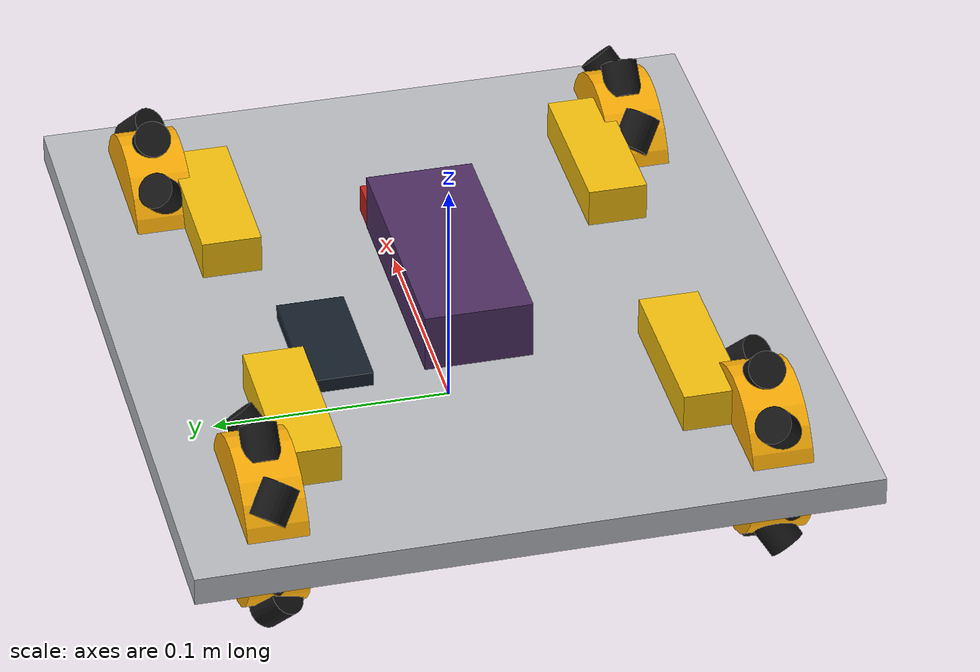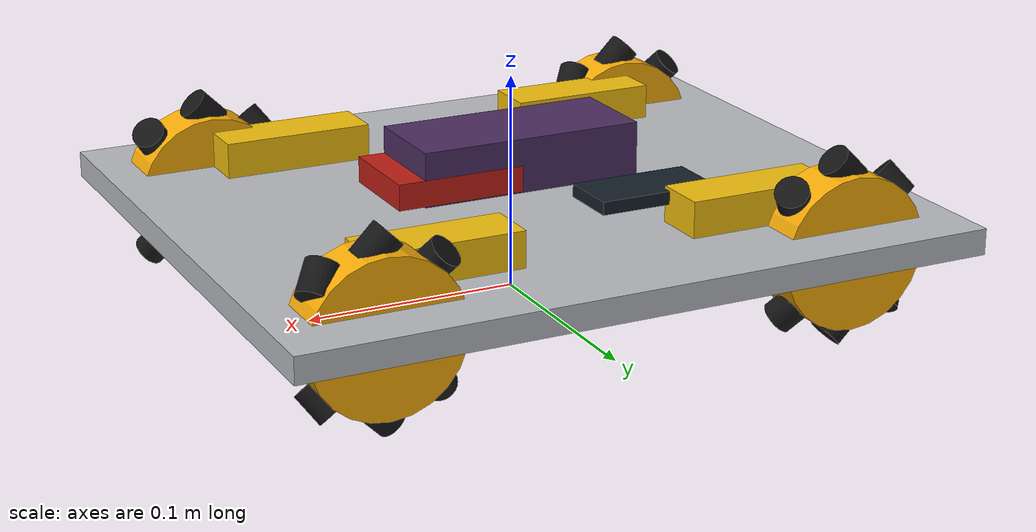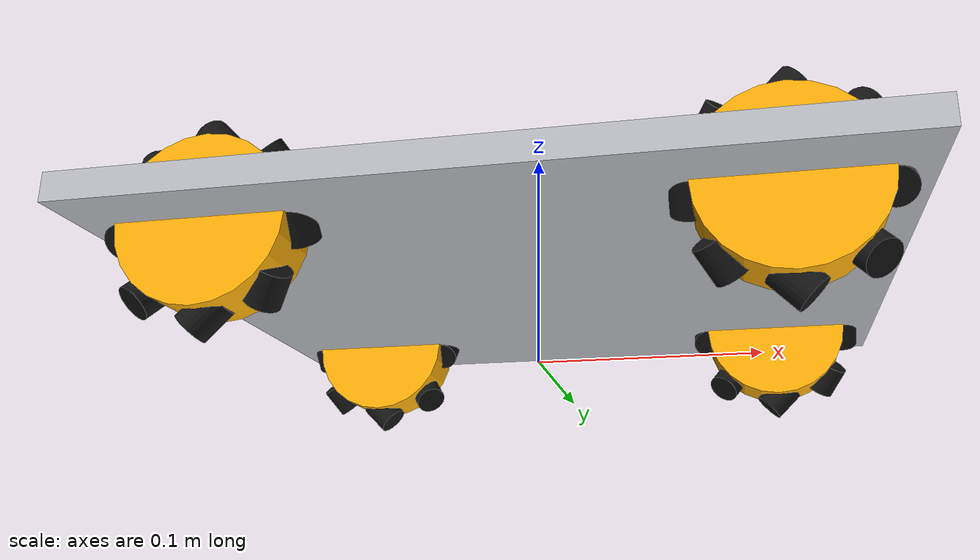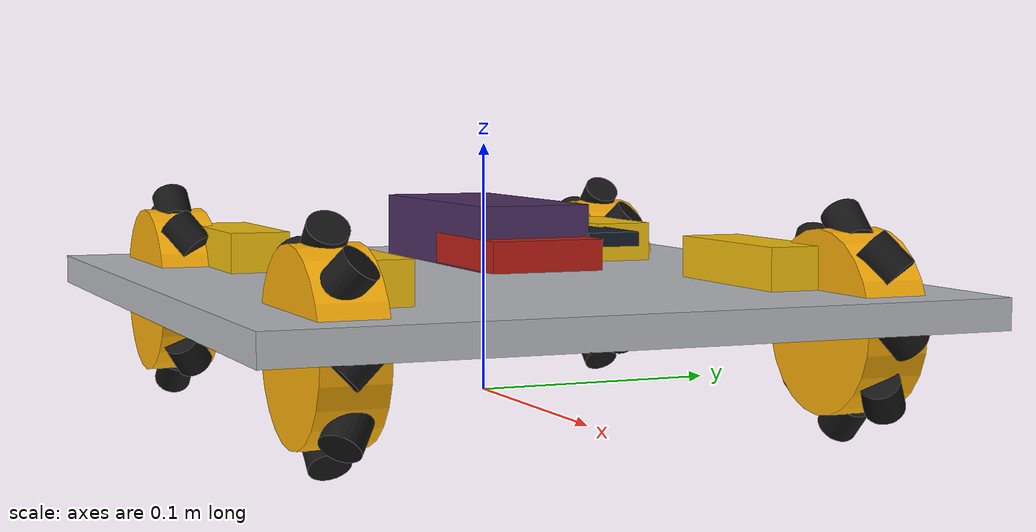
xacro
<?xml version="1.0"?>
<robot xmlns:xacro="http://www.ros.org/wiki/xacro" name="reception_robot">
  <!-- All dimensions are editable estimates based on the supplied photograph. SI units. -->
  <xacro:arg name="chassis_length" default="0.320"/>
  <xacro:arg name="chassis_width" default="0.280"/>
  <xacro:arg name="chassis_thickness" default="0.012"/>
  <xacro:arg name="wheel_radius" default="0.035"/>
  <xacro:arg name="wheel_width" default="0.025"/>
  <xacro:arg name="wheelbase" default="0.220"/>
  <xacro:arg name="wheel_separation" default="0.205"/>
  <xacro:arg name="motor_length" default="0.070"/>
  <xacro:arg name="motor_width" default="0.025"/>
  <xacro:arg name="motor_height" default="0.025"/>
  <xacro:arg name="battery_length" default="0.105"/>
  <xacro:arg name="battery_width" default="0.045"/>
  <xacro:arg name="battery_height" default="0.025"/>
  <xacro:arg name="display_mount_height" default="0.350"/>

  <xacro:property name="L" value="$(arg chassis_length)"/>
  <xacro:property name="W" value="$(arg chassis_width)"/>
  <xacro:property name="T" value="$(arg chassis_thickness)"/>
  <xacro:property name="R" value="$(arg wheel_radius)"/>
  <xacro:property name="WW" value="$(arg wheel_width)"/>
  <xacro:property name="WB" value="$(arg wheelbase)"/>
  <xacro:property name="WS" value="$(arg wheel_separation)"/>
  <!-- base_link is chassis center; ground is z=-R. -->
  <!-- TF-only ground reference frame, intentionally has no physical inertia. -->
  <link name="base_footprint"/>
  <link name="base_link">
    <inertial><mass value="1.20"/><origin xyz="0 0 0"/><inertia ixx="0.0080" ixy="0" ixz="0" iyy="0.0110" iyz="0" izz="0.0180"/></inertial>
    <visual><geometry><box size="${L} ${W} ${T}"/></geometry><material name="aluminum"><color rgba="0.72 0.73 0.75 1"/></material></visual>
    <collision><geometry><box size="${L} ${W} ${T}"/></geometry></collision>
  </link>
  <joint name="base_footprint_joint" type="fixed"><parent link="base_footprint"/><child link="base_link"/><origin xyz="0 0 ${R + T/2}" rpy="0 0 0"/></joint>

  <xacro:macro name="box_component" params="name x y z sx sy sz mass color">
    <link name="${name}">
      <inertial><mass value="${mass}"/><origin xyz="0 0 0"/><inertia ixx="${mass*(sy*sy+sz*sz)/12}" ixy="0" ixz="0" iyy="${mass*(sx*sx+sz*sz)/12}" iyz="0" izz="${mass*(sx*sx+sy*sy)/12}"/></inertial>
      <visual><geometry><box size="${sx} ${sy} ${sz}"/></geometry><material name="${name}_mat"><color rgba="${color}"/></material></visual>
      <collision><geometry><box size="${sx} ${sy} ${sz}"/></geometry></collision>
    </link>
    <joint name="${name}_mount" type="fixed"><parent link="base_link"/><child link="${name}"/><origin xyz="${x} ${y} ${z}"/></joint>
  </xacro:macro>
  <!-- Estimated component envelopes; the photo does not establish scale or mass. -->
  <xacro:box_component name="front_left_motor" x="${WB/2-0.035}" y="${WS/2-0.020}" z="${-R+0.045}" sx="$(arg motor_length)" sy="$(arg motor_width)" sz="$(arg motor_height)" mass="0.080" color="0.95 0.75 0.05 1"/>
  <xacro:box_component name="front_right_motor" x="${WB/2-0.035}" y="${-WS/2+0.020}" z="${-R+0.045}" sx="$(arg motor_length)" sy="$(arg motor_width)" sz="$(arg motor_height)" mass="0.080" color="0.95 0.75 0.05 1"/>
  <xacro:box_component name="rear_left_motor" x="${-WB/2+0.035}" y="${WS/2-0.020}" z="${-R+0.045}" sx="$(arg motor_length)" sy="$(arg motor_width)" sz="$(arg motor_height)" mass="0.080" color="0.95 0.75 0.05 1"/>
  <xacro:box_component name="rear_right_motor" x="${-WB/2+0.035}" y="${-WS/2+0.020}" z="${-R+0.045}" sx="$(arg motor_length)" sy="$(arg motor_width)" sz="$(arg motor_height)" mass="0.080" color="0.95 0.75 0.05 1"/>
  <xacro:box_component name="battery_pack" x="0" y="0" z="${T/2+0.018}" sx="$(arg battery_length)" sy="$(arg battery_width)" sz="$(arg battery_height)" mass="0.180" color="0.30 0.18 0.38 1"/>
  <xacro:box_component name="esp32_board" x="-0.035" y="0.060" z="${T/2+0.012}" sx="0.055" sy="0.028" sz="0.006" mass="0.015" color="0.08 0.12 0.16 1"/>
  <xacro:box_component name="l298n_driver" x="0.035" y="0" z="${T/2+0.012}" sx="0.060" sy="0.045" sz="0.012" mass="0.035" color="0.75 0.12 0.08 1"/>
  <!-- Configurable frame for a future portrait display; the display itself is omitted. -->
  <link name="display_mount"><inertial><mass value="0.001"/><origin xyz="0 0 0"/><inertia ixx="1e-6" ixy="0" ixz="0" iyy="1e-6" iyz="0" izz="1e-6"/></inertial></link>
  <joint name="display_mount_joint" type="fixed"><parent link="base_link"/><child link="display_mount"/><origin xyz="0 0 $(arg display_mount_height)" rpy="0 0 0"/></joint>

  <!-- Wheel-cylinder axis is local Z rotated to robot Y; joint axis is robot Y. -->
  <xacro:macro name="wheel_roller_visual" params="wheel idx roller_sign">
    <xacro:property name="a" value="${idx*0.78539816339}"/>
    <visual name="${wheel}_roller_visual_${idx}">
      <origin xyz="${R*cos(a)} 0 ${R*sin(a)}" rpy="${roller_sign*0.78539816339} 0 ${-a}"/>
      <geometry><cylinder radius="${R*0.22}" length="${WW*0.62}"/></geometry>
      <material name="roller_black"><color rgba="0.08 0.08 0.08 1"/></material>
    </visual>
  </xacro:macro>
  <xacro:macro name="mecanum_wheel" params="name x y roller_sign">
    <link name="${name}_link">
      <inertial><mass value="0.055"/><origin xyz="0 0 0"/><inertia ixx="0.000025" ixy="0" ixz="0" iyy="0.000040" iyz="0" izz="0.000025"/></inertial>
      <visual><origin rpy="1.57079632679 0 0"/><geometry><cylinder radius="${R}" length="${WW}"/></geometry><material name="wheel_yellow"><color rgba="0.98 0.68 0.03 1"/></material></visual>
      <collision><origin rpy="1.57079632679 0 0"/><geometry><cylinder radius="${R}" length="${WW}"/></geometry></collision>
      <!-- Eight angled black roller visuals on the yellow wheel body. -->
      <xacro:wheel_roller_visual wheel="${name}" idx="0" roller_sign="${roller_sign}"/>
      <xacro:wheel_roller_visual wheel="${name}" idx="1" roller_sign="${roller_sign}"/>
      <xacro:wheel_roller_visual wheel="${name}" idx="2" roller_sign="${roller_sign}"/>
      <xacro:wheel_roller_visual wheel="${name}" idx="3" roller_sign="${roller_sign}"/>
      <xacro:wheel_roller_visual wheel="${name}" idx="4" roller_sign="${roller_sign}"/>
      <xacro:wheel_roller_visual wheel="${name}" idx="5" roller_sign="${roller_sign}"/>
      <xacro:wheel_roller_visual wheel="${name}" idx="6" roller_sign="${roller_sign}"/>
      <xacro:wheel_roller_visual wheel="${name}" idx="7" roller_sign="${roller_sign}"/>
    </link>
    <joint name="${name}_joint" type="continuous"><parent link="base_link"/><child link="${name}_link"/><origin xyz="${x} ${y} ${-T/2}"/><axis xyz="0 1 0"/><limit effort="10" velocity="30"/><dynamics damping="0.02" friction="0.01"/></joint>
  </xacro:macro>
  <!-- X forward, Y left; standard X roller slope on FL/RR, opposite on FR/RL. -->
  <xacro:mecanum_wheel name="front_left_wheel" x="${WB/2}" y="${WS/2}" roller_sign="1"/>
  <xacro:mecanum_wheel name="front_right_wheel" x="${WB/2}" y="${-WS/2}" roller_sign="-1"/>
  <xacro:mecanum_wheel name="rear_left_wheel" x="${-WB/2}" y="${WS/2}" roller_sign="-1"/>
  <xacro:mecanum_wheel name="rear_right_wheel" x="${-WB/2}" y="${-WS/2}" roller_sign="1"/>

  <gazebo>
    <plugin filename="gz-sim-joint-state-publisher-system" name="gz::sim::systems::JointStatePublisher"/>
    <plugin filename="gz-sim-mecanum-drive-system" name="gz::sim::systems::MecanumDrive">
      <front_left_joint>front_left_wheel_joint</front_left_joint>
      <front_right_joint>front_right_wheel_joint</front_right_joint>
      <back_left_joint>rear_left_wheel_joint</back_left_joint>
      <back_right_joint>rear_right_wheel_joint</back_right_joint>
      <wheel_separation>${WS}</wheel_separation>
      <wheelbase>${WB}</wheelbase>
      <wheel_radius>${R}</wheel_radius>
      <min_linear_acceleration>-1.5</min_linear_acceleration><max_linear_acceleration>1.5</max_linear_acceleration>
      <min_angular_acceleration>-2.0</min_angular_acceleration><max_angular_acceleration>2.0</max_angular_acceleration>
    </plugin>
  </gazebo>
  <gazebo reference="base_link"><material>Gazebo/Grey</material></gazebo>
  <gazebo reference="front_left_wheel_link"><mu1>0.8</mu1><mu2>0.8</mu2><kp>100000</kp><kd>1</kd></gazebo>
  <gazebo reference="front_right_wheel_link"><mu1>0.8</mu1><mu2>0.8</mu2><kp>100000</kp><kd>1</kd></gazebo>
  <gazebo reference="rear_left_wheel_link"><mu1>0.8</mu1><mu2>0.8</mu2><kp>100000</kp><kd>1</kd></gazebo>
  <gazebo reference="rear_right_wheel_link"><mu1>0.8</mu1><mu2>0.8</mu2><kp>100000</kp><kd>1</kd></gazebo>
</robot>
